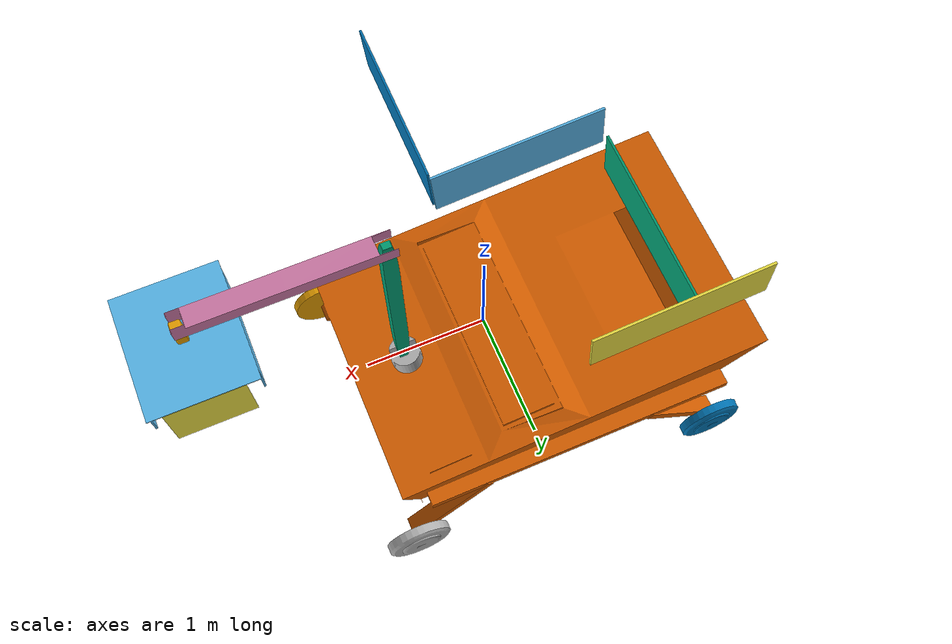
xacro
<?xml version="1.0"?>
<!-- created with Phobos 1.0.1 "Capricious Choutengan" -->
<robot name="ubot" xmlns:xacro="http://wiki.ros.org/xacro">

    <link name="base_link">

      <visual name="Cube.000.001.002">
        <origin xyz="0 0 0" rpy="0 0 0"/>
        <geometry>
          <sphere radius="0.001"/>
        </geometry>
      </visual>
      <collision name="Cube.000.001.002.000">
        <origin xyz="0 0 0" rpy="0 0 0"/>
        <geometry>
          <sphere radius="0.001"/>
        </geometry>
      </collision>
    </link>

    <link name="X1">
      <inertial>
        <origin xyz="-1.75 0 0.3" rpy="0 0 0"/>
        <mass value="0.001"/>
        <inertia ixx="0.001" ixy="0" ixz="0" iyy="0.001" iyz="0" izz="0.001"/>
      </inertial>
      <visual name="Cube.043">
        <origin xyz="-1.75 0 0.3" rpy="0 0 0"/>
        <geometry>
          <mesh filename="file://$(find ubot_description)/meshes/dae/Cube.043.dae" scale="1.0 1.0 1.0"/>
        </geometry>
      </visual>
      <collision name="Cube.043">
        <origin xyz="-1.75 0 0.3" rpy="0 0 0"/>
        <geometry>
          <mesh filename="file://$(find ubot_description)/meshes/dae/Cube.043.dae" scale="1.0 1.0 1.0"/>
        </geometry>
      </collision>
    </link>

    <link name="X2">
      <inertial>
        <origin xyz="-0.25 0 0.3" rpy="0 0 0"/>
        <mass value="0.001"/>
        <inertia ixx="0.001" ixy="0" ixz="0" iyy="0.001" iyz="0" izz="0.001"/>
      </inertial>
      <visual name="Cube.043">
        <origin xyz="-0.25 0 0.3" rpy="0 0 0"/>
        <geometry>
          <mesh filename="file://$(find ubot_description)/meshes/dae/Cube.043.dae" scale="1.0 1.0 1.0"/>
        </geometry>
      </visual>
      <collision name="Cube.043">
        <origin xyz="-0.25 0 0.3" rpy="0 0 0"/>
        <geometry>
          <mesh filename="file://$(find ubot_description)/meshes/dae/Cube.043.dae" scale="1.0 1.0 1.0"/>
        </geometry>
      </collision>
    </link>

    <link name="X3">
      <inertial>
        <origin xyz="-1 0.75 0.3" rpy="0 0 1.57"/>
        <mass value="0.001"/>
        <inertia ixx="0.001" ixy="0" ixz="0" iyy="0.001" iyz="0" izz="0.001"/>
      </inertial>
      <visual name="Cube.043">
        <origin xyz="-1 0.75 0.3" rpy="0 0 1.57"/>
        <geometry>
          <mesh filename="file://$(find ubot_description)/meshes/dae/Cube.043.dae" scale="1.0 1.0 1.0"/>
        </geometry>
      </visual>
      <collision name="Cube.043">
        <origin xyz="-1 0.75 0.3" rpy="0 0 1.57 "/>
        <geometry>
          <mesh filename="file://$(find ubot_description)/meshes/dae/Cube.043.dae" scale="1.0 1.0 1.0"/>
        </geometry>
      </collision>
    </link>

    <link name="X4">
      <inertial>
        <origin xyz="-1 -0.75 0.3" rpy="0 0 1.57"/>
        <mass value="0.001"/>
        <inertia ixx="0.001" ixy="0" ixz="0" iyy="0.001" iyz="0" izz="0.001"/>
      </inertial>
      <visual name="Cube.043">
        <origin xyz="-1 -0.75 0.3" rpy="0 0 1.57"/>
        <geometry>
          <mesh filename="file://$(find ubot_description)/meshes/dae/Cube.043.dae" scale="1.0 1.0 1.0"/>
        </geometry>
      </visual>
      <collision name="Cube.043">
        <origin xyz="-1 -0.75 0.3" rpy="0 0 1.57 "/>
        <geometry>
          <mesh filename="file://$(find ubot_description)/meshes/dae/Cube.043.dae" scale="1.0 1.0 1.0"/>
        </geometry>
      </collision>
    </link>

    <link name="chasis">
      <inertial>
        <origin xyz="0 0 0" rpy="0 0 0"/>
        <mass value="1000"/>
        <inertia ixx="0.001" ixy="0" ixz="0" iyy="0.001" iyz="0" izz="0.001"/>
      </inertial>
      <visual name="Cube.000">
        <origin xyz="-0.0052 0.02539 0.38337" rpy="0 0 0"/>
        <geometry>
          <mesh filename="file://$(find ubot_description)/meshes/dae/Cube.000.dae" scale="1.0 1.0 1.0"/>
        </geometry>
      </visual>
      <collision name="Cube.000.000">
        <origin xyz="-0.0036 0.03044 0.37389" rpy="0 0 0"/>
        <geometry>
          <mesh filename="file://$(find ubot_description)/meshes/dae/Cube.001.dae" scale="1.0 1.0 1.0"/>
        </geometry>
      </collision>
    </link>

    <link name="link_foreamr">
      <inertial>
        <origin xyz="0 0 0" rpy="0 0 0"/>
        <mass value="0.001"/>
        <inertia ixx="0.001" ixy="0" ixz="0" iyy="0.001" iyz="0" izz="0.001"/>
      </inertial>
      <visual name="Forearm.000">
        <origin xyz="0 -0.69 0" rpy="-1.5708 0 0"/>
        <geometry>
          <mesh filename="file://$(find ubot_description)/meshes/dae/Cube.002.dae" scale="1.0 1.0 1.0"/>
        </geometry>
      </visual>
      <collision name="Forearm.000.000">
        <origin xyz="0.00012 -0.69 0" rpy="-1.5708 0 0"/>
        <geometry>
          <mesh filename="file://$(find ubot_description)/meshes/dae/Cube.022.dae" scale="1.0 1.0 1.0"/>
        </geometry>
      </collision>
    </link>

    <link name="link_front_left_wheel">
      <inertial>
        <origin xyz="0 0 0" rpy="0 0 0"/>
        <mass value="1"/>
        <inertia ixx="0.001" ixy="0" ixz="0" iyy="0.001" iyz="0" izz="0.001"/>
      </inertial>
      <visual name="Cylinder.004">
        <origin xyz="-0.00027 0.00049 -0.00119" rpy="0 0 0"/>
        <geometry>
          <mesh filename="file://$(find ubot_description)/meshes/dae/Cylinder.006.dae" scale="0.26793 0.26864 0.21329"/>
        </geometry>
      </visual>
      <collision name="Cylinder.004.000">
        <origin xyz="0 0 0" rpy="0 0 0"/>
        <geometry>
          <mesh filename="file://$(find ubot_description)/meshes/dae/Cylinder.015.dae" scale="1.0 1.0 1.0"/>
        </geometry>
      </collision>
    </link>

    <link name="link_front_right_wheel">
      <inertial>
        <origin xyz="0 0 0" rpy="0 0 0"/>
        <mass value="1"/>
        <inertia ixx="0.001" ixy="0" ixz="0" iyy="0.001" iyz="0" izz="0.001"/>
      </inertial>
      <visual name="Cylinder.004">
        <origin xyz="0 0 0.22" rpy="0 -3.14159 0"/>
        <geometry>
          <mesh filename="file://$(find ubot_description)/meshes/dae/Cylinder.009.dae" scale="1.0 1.0 1.0"/>
        </geometry>
      </visual>
      <collision name="Cylinder.005.000">
        <origin xyz="0 0 0.22" rpy="0 -3.14159 0"/>
        <geometry>
          <mesh filename="file://$(find ubot_description)/meshes/dae/Cylinder.009.dae" scale="1.0 1.0 1.0"/>
        </geometry>
      </collision>
    </link>

    <link name="link_hand">
      <inertial>
        <origin xyz="0 0 0" rpy="0 0 0"/>
        <mass value="1"/>
        <inertia ixx="0.001" ixy="0" ixz="0" iyy="0.001" iyz="0" izz="0.001"/>
      </inertial>
      <visual name="Hand.000">
        <origin xyz="0 0 0" rpy="0 3.14159 0"/>
        <geometry>
          <mesh filename="file://$(find ubot_description)/meshes/dae/Cube.011.dae" scale="1.49878 1.8 1.0"/>
        </geometry>
      </visual>
    </link>

    <link name="link_humerus">
      <inertial>
        <origin xyz="0 0 0" rpy="0 0 0"/>
        <mass value="1"/>
        <inertia ixx="0.001" ixy="0" ixz="0" iyy="0.001" iyz="0" izz="0.001"/>
      </inertial>
      <visual name="Humerus">
        <origin xyz="0 0.96 0" rpy="-1.5708 0 0"/>
        <geometry>
          <mesh filename="file://$(find ubot_description)/meshes/dae/Cube.007.dae" scale="0.055 0.045 0.95"/>
        </geometry>
      </visual>
      <collision name="Humerus.000">
        <origin xyz="0 0.96 0" rpy="-1.5708 0 0"/>
        <geometry>
          <mesh filename="file://$(find ubot_description)/meshes/dae/Cube.008.dae" scale="1.0 1.0 1.0"/>
        </geometry>
      </collision>
    </link>

    <link name="link_left_finger">
      <inertial>
        <origin xyz="0 0 0" rpy="0 0 0"/>
        <mass value="1"/>
        <inertia ixx="0.001" ixy="0" ixz="0" iyy="0.001" iyz="0" izz="0.001"/>
      </inertial>
      <visual name="Cube.000.001">
        <origin xyz="0.00014 0.14 -0.00028" rpy="1.56881 0.00053 -0.00102"/>
        <geometry>
          <mesh filename="file://$(find ubot_description)/meshes/dae/Cube.013.dae" scale="1.0 1.0 2.75"/>
        </geometry>
      </visual>
      <collision name="Cube.000.001.000">
        <origin xyz="0.00014 0.14 -0.00028" rpy="1.56881 0.00053 -0.00102"/>
        <geometry>
          <mesh filename="file://$(find ubot_description)/meshes/dae/Cube.003.dae" scale="1.0 1.0 1.46667"/>
        </geometry>
      </collision>
    </link>

    <link name="link_rear_left_wheel">
      <inertial>
        <origin xyz="0 0 0" rpy="0 0 0"/>
        <mass value="0.1"/>
        <inertia ixx="0.001" ixy="0" ixz="0" iyy="0.001" iyz="0" izz="0.001"/>
      </inertial>
      <visual name="Cylinder.004">
        <origin xyz="-0.00027 0.00049 -0.00119" rpy="0 0 0"/>
        <geometry>
          <mesh filename="file://$(find ubot_description)/meshes/dae/Cylinder.013.dae" scale="1.0 1.0 1.0"/>
        </geometry>
      </visual>
      <collision name="tmp_export_666.001">
        <origin xyz="0 0 0" rpy="0 0 0"/>
        <geometry>
          <mesh filename="file://$(find ubot_description)/meshes/dae/Cylinder.013.dae" scale="1.0 1.0 1.0"/>
        </geometry>
      </collision>
    </link>

    <link name="link_rear_right_wheel">
      <inertial>
        <origin xyz="0 0 0" rpy="0 0 0"/>
        <mass value="0.1"/>
        <inertia ixx="0.001" ixy="0" ixz="0" iyy="0.001" iyz="0" izz="0.001"/>
      </inertial>
      <visual name="Cylinder.004">
        <origin xyz="0.00043 -0.003 0.21998" rpy="-0.01365 -3.13979 0.00954"/>
        <geometry>
          <mesh filename="file://$(find ubot_description)/meshes/dae/Cylinder.011.dae" scale="1.0 1.0 1.0"/>
        </geometry>
      </visual>
      <collision name="Cylinder.006.000">
        <origin xyz="0.00043 -0.003 0.21998" rpy="-0.01365 -3.13979 0.00954"/>
        <geometry>
          <mesh filename="file://$(find ubot_description)/meshes/dae/Cylinder.011.dae" scale="1.0 1.0 1.0"/>
        </geometry>
      </collision>
    </link>

    <link name="link_right_finger">
      <inertial>
        <origin xyz="0 0 0" rpy="0 0 0"/>
        <mass value="1"/>
        <inertia ixx="0.001" ixy="0" ixz="0" iyy="0.001" iyz="0" izz="0.001"/>
      </inertial>
      <visual name="Cube.002">
        <origin xyz="0 -0.14 0" rpy="-1.5708 0 0"/>
        <geometry>
          <mesh filename="file://$(find ubot_description)/meshes/dae/Cube.012.dae" scale="0.275 0.005 0.22"/>
        </geometry>
      </visual>
      <collision name="Cube.002.000">
        <origin xyz="0 -0.14 0" rpy="-1.5708 0 0"/>
        <geometry>
          <mesh filename="file://$(find ubot_description)/meshes/dae/Cube.014.dae" scale="1.0 1.0 2.75"/>
        </geometry>
      </collision>
    </link>

    <link name="link_shoulder">
      <inertial>
        <origin xyz="0 0 0" rpy="0 0 0"/>
        <mass value="1"/>
        <inertia ixx="0.001" ixy="0" ixz="0" iyy="0.001" iyz="0" izz="0.001"/>
      </inertial>
      <visual name="shoulder.000">
        <origin xyz="0 0 0" rpy="0 0 0"/>
        <geometry>
          <mesh filename="file://$(find ubot_description)/meshes/dae/Cylinder.005.dae" scale="0.125 0.125 0.095"/>
        </geometry>
      </visual>
      <collision name="shoulder.000.000">
        <origin xyz="0 0 0" rpy="0 0 0"/>
        <geometry>
          <mesh filename="file://$(find ubot_description)/meshes/dae/Cylinder.002.dae" scale="1.0 1.0 1.0"/>
        </geometry>
      </collision>
    </link>

    <link name="link_wrist">
      <inertial>
        <origin xyz="0 0 0" rpy="0 0 0"/>
        <mass value="1"/>
        <inertia ixx="0.001" ixy="0" ixz="0" iyy="0.001" iyz="0" izz="0.001"/>
      </inertial>
      <visual name="Wrist.000.001">
        <origin xyz="0 -0.08 0" rpy="-1.5708 0 0"/>
        <geometry>
          <mesh filename="file://$(find ubot_description)/meshes/dae/Cube.010.dae" scale="1.0 1.0 1.0"/>
        </geometry>
      </visual>
      <collision name="Wrist.000.001.000">
        <origin xyz="0 -0.08 0" rpy="-1.5708 0 0"/>
        <geometry>
          <mesh filename="file://$(find ubot_description)/meshes/dae/Cube.023.dae" scale="1.0 1.0 1.0"/>
        </geometry>
      </collision>
    </link>
    <joint name="base_joint" type="floating">
      <origin xyz="0 0 0" rpy="0 0 0"/>
      <parent link="base_link"/>
      <child link="chasis"/>
    </joint>

    <joint name="X1" type="floating">
      <origin xyz="-0.73657 0.79033 0.27768" rpy="0.06981 0 1.5708"/>
      <parent link="base_link"/>
      <child link="X1"/>
    </joint>

    <joint name="X2" type="floating">
      <origin xyz="-1.15657 0.02033 0.28768" rpy="0 0.07854 0"/>
      <parent link="chasis"/>
      <child link="X2"/>
    </joint>

    <joint name="X3" type="floating">
      <origin xyz="-0.30657 0.02033 0.23768" rpy="0 0.06981 0"/>
      <parent link="chasis"/>
      <child link="X3"/>
    </joint>

    <joint name="X4" type="floating">
      <origin xyz="-0.73657 -0.74967 0.27768" rpy="0.06981 0 1.5708"/>
      <parent link="chasis"/>
      <child link="X4"/>
    </joint>

    <joint name="link_foreamr" type="continuous">
      <origin xyz="-0.00276 1.89983 0" rpy="0 0 1.5708"/>
      <parent link="link_humerus"/>
      <child link="link_foreamr"/>
      <axis xyz="0 0 1.0"/>
      <limit effort="0" velocity="0"/>
    </joint>

    <joint name="link_front_left_wheel" type="continuous">
      <origin xyz="1.09369 1.05151 -1.01183" rpy="-1.5708 0 0"/>
      <parent link="chasis"/>
      <child link="link_front_left_wheel"/>
      <axis xyz="0 0 1.0"/>
      <limit effort="0" velocity="0"/>
    </joint>

    <joint name="link_front_right_wheel" type="continuous">
      <origin xyz="1.09316 -1.20086 -1.01183" rpy="-1.5708 0 0"/>
      <parent link="chasis"/>
      <child link="link_front_right_wheel"/>
      <axis xyz="0 0 1.0"/>
      <limit effort="0" velocity="0"/>
    </joint>

    <joint name="link_hand" type="continuous">
      <origin xyz="0 -0.19855 0" rpy="-1.5708 0 -3.14159"/>
      <parent link="link_wrist"/>
      <child link="link_hand"/>
      <axis xyz="0 0 1.0"/>
      <limit effort="0" velocity="0"/>
    </joint>

    <joint name="link_humerus" type="continuous">
      <origin xyz="0.01768 0 0.02747" rpy="1.5708 -0.08203 0"/>
      <parent link="link_shoulder"/>
      <child link="link_humerus"/>
      <axis xyz="0 0 1.0"/>
      <limit effort="0" velocity="0"/>
    </joint>

    <joint name="link_left_finger" type="prismatic">
      <origin xyz="0 0.44494 0.085" rpy="-1.56881 -3.14057 -0.00053"/>
      <parent link="link_hand"/>
      <child link="link_left_finger"/>
      <axis xyz="0 0 1.0"/>
      <limit lower="-0.5" upper="0" effort="5000000000.0" velocity="0"/>
    </joint>

    <joint name="link_rear_left_wheel" type="continuous">
      <origin xyz="-1.65684 1.04151 -1.10201" rpy="1.5708 0 3.14159"/>
      <parent link="chasis"/>
      <child link="link_rear_left_wheel"/>
      <axis xyz="0 0 1.0"/>
      <limit effort="0" velocity="0"/>
    </joint>

    <joint name="link_rear_right_wheel" type="continuous">
      <origin xyz="-1.65684 -1.20086 -1.06183" rpy="-1.58444 -0.00952 0.00193"/>
      <parent link="chasis"/>
      <child link="link_rear_right_wheel"/>
      <axis xyz="0 0 1.0"/>
      <limit effort="0" velocity="0"/>
    </joint>

    <joint name="link_right_finger" type="prismatic">
      <origin xyz="0 -0.44506 0.085" rpy="1.5708 -3.14159 0"/>
      <parent link="link_hand"/>
      <child link="link_right_finger"/>
      <axis xyz="0 0 1.0"/>
      <limit lower="-0.5" upper="0" effort="5000000000.0" velocity="0"/>
    </joint>

    <joint name="link_shoulder" type="continuous">
      <origin xyz="0.68631 0.02539 -0.01232" rpy="0 0.08203 0"/>
      <parent link="chasis"/>
      <child link="link_shoulder"/>
      <axis xyz="0 0 1.0"/>
      <limit effort="0" velocity="0"/>
    </joint>

    <joint name="link_wrist" type="continuous">
      <origin xyz="-0.03221 -1.40749 0" rpy="0 0 -1.5708"/>
      <parent link="link_foreamr"/>
      <child link="link_wrist"/>
      <axis xyz="0 0 1.0"/>
      <limit effort="0" velocity="0"/>
    </joint>

</robot>
